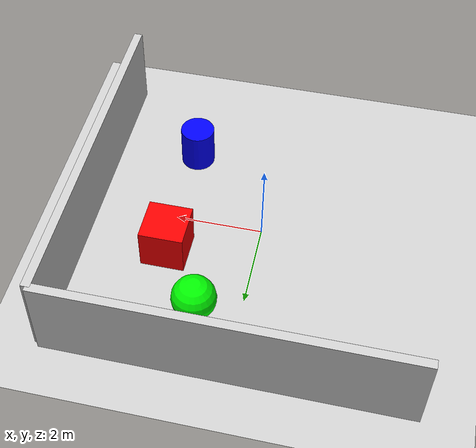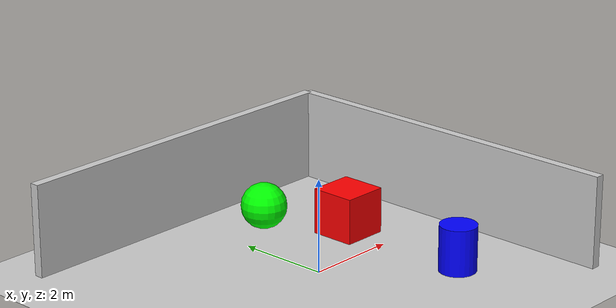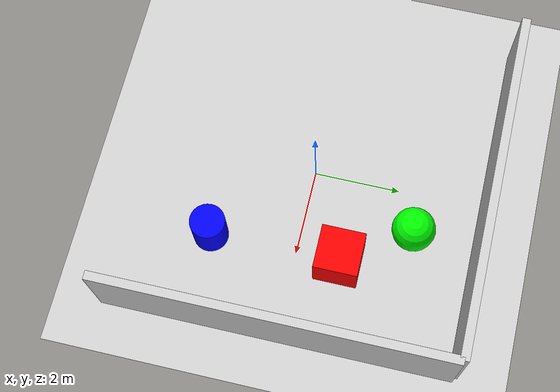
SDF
<?xml version="1.0" ?>
<sdf version="1.6">
  <world name="indoor_room">
    <include><uri>model://sun</uri></include>
    <include><uri>model://ground_plane</uri></include>

    <!-- Wall 1 -->
    <model name="wall1">
      <static>true</static><pose>4 0 1 0 0 0</pose>
      <link name="link">
        <collision name="c"><geometry><box><size>0.2 8 2</size></box></geometry></collision>
        <visual name="v"><geometry><box><size>0.2 8 2</size></box></geometry><material><ambient>0.8 0.8 0.8 1</ambient></material></visual>
      </link>
    </model>

    <!-- Wall 2 -->
    <model name="wall2">
      <static>true</static><pose>0 4 1 0 0 1.5707</pose>
      <link name="link">
        <collision name="c"><geometry><box><size>0.2 8 2</size></box></geometry></collision>
        <visual name="v"><geometry><box><size>0.2 8 2</size></box></geometry><material><ambient>0.8 0.8 0.8 1</ambient></material></visual>
      </link>
    </model>

    <!-- A Red Box (Desk) -->
    <model name="red_box">
      <static>true</static><pose>2 1 0.5 0 0 0</pose>
      <link name="link">
        <collision name="c"><geometry><box><size>1 1 1</size></box></geometry></collision>
        <visual name="v"><geometry><box><size>1 1 1</size></box></geometry><material><ambient>1 0 0 1</ambient></material></visual>
      </link>
    </model>

    <!-- A Blue Cylinder (Trash Can) -->
    <model name="blue_cylinder">
      <static>true</static><pose>2 -2 0.5 0 0 0</pose>
      <link name="link">
        <collision name="c"><geometry><cylinder><radius>0.4</radius><length>1</length></cylinder></geometry></collision>
        <visual name="v"><geometry><cylinder><radius>0.4</radius><length>1</length></cylinder></geometry><material><ambient>0 0 1 1</ambient></material></visual>
      </link>
    </model>

    <!-- A Green Sphere -->
    <model name="green_sphere">
      <static>true</static><pose>1 2.5 0.5 0 0 0</pose>
      <link name="link">
        <collision name="c"><geometry><sphere><radius>0.5</radius></sphere></geometry></collision>
        <visual name="v"><geometry><sphere><radius>0.5</radius></sphere></geometry><material><ambient>0 1 0 1</ambient></material></visual>
      </link>
    </model>

  </world>
</sdf>
